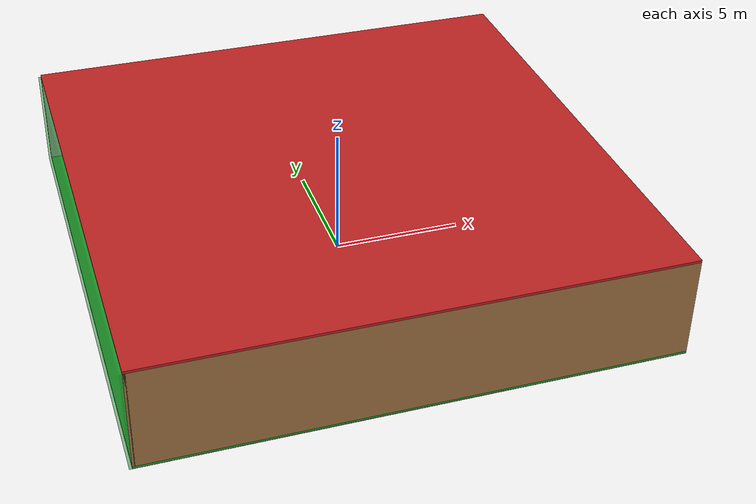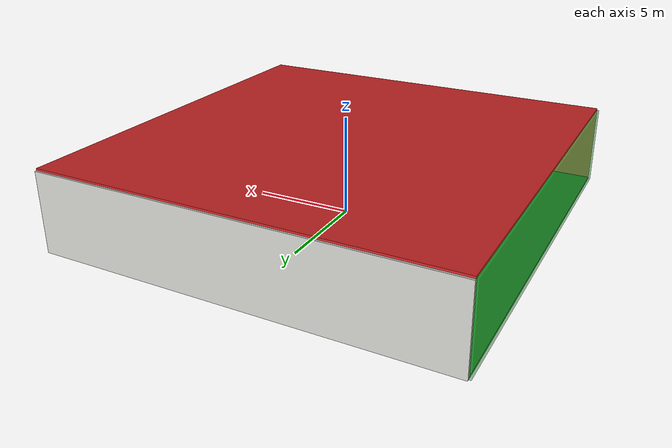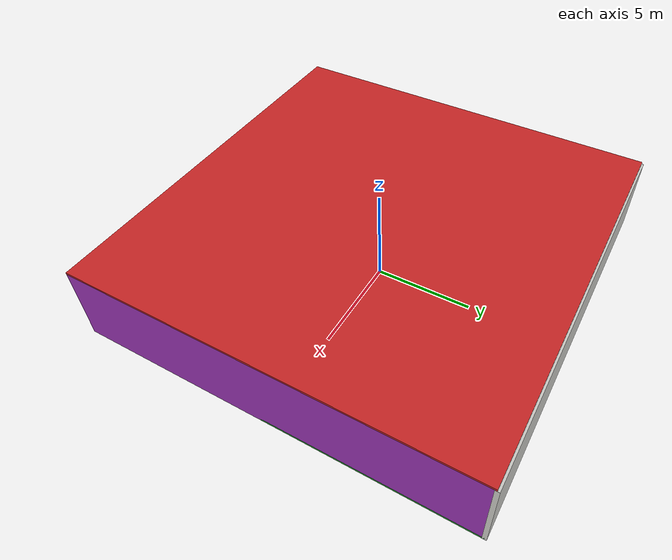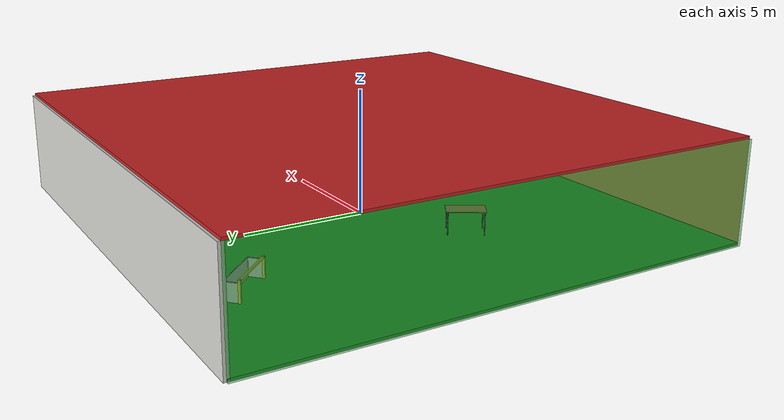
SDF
<sdf version="1.4">
 <world name="default">
  <physics type="ode">
   <max_step_size>0.001</max_step_size>
   <real_time_factor>1</real_time_factor>
   <real_time_update_rate>1000</real_time_update_rate>
   <gravity>0 0 -9.8</gravity>
  </physics>
  <scene><ambient>0.4 0.4 0.4 1</ambient><background>0.7 0.7 0.7 1</background><shadows>1</shadows></scene>
  <model name="Surrounding">
   <static>1</static>
   <link name="Ceiling">
    <collision name="Ceiling_Collision"><geometry><box><size>20 20 0.1</size></box></geometry></collision>
    <visual name="Ceiling_Visual">
     <geometry><box><size>20 20 0.1</size></box></geometry>
     <material>
      <script><uri>file://media/materials/scripts/gazebo.material</uri><name>Gazebo/RedGlow</name></script>
     </material>
    </visual>
    <pose>0 0 4.05 0 0 0</pose>
   </link>
   <link name="Wall_South">
    <collision name="Wall_South_Collision">
     <geometry><box><size>20 0 4</size></box></geometry>
     <pose>0 0 2 0 -0 0</pose>
    </collision>
    <visual name="Wall_South_Visual">
     <pose>0 0 2 0 -0 0</pose>
     <geometry><box><size>20 0 4</size></box></geometry>
     <material>
      <script><uri>file://media/materials/scripts/gazebo.material</uri><name>Gazebo/Wood</name></script>
     </material>
    </visual>
    <velocity_decay><linear>0</linear><angular>0</angular></velocity_decay>
    <pose>0 -10 0 0 -0 0</pose>
   </link>
   <link name="Wall_East">
    <collision name="Wall_21_Collision">
     <geometry><box><size>20 0 4</size></box></geometry>
     <pose>0 0 2 0 -0 0</pose>
    </collision>
    <visual name="Wall_21_Visual">
     <pose>0 0 2 0 -0 0</pose>
     <geometry><box><size>20 0 4</size></box></geometry>
     <material>
      <script><uri>file://media/materials/scripts/gazebo.material</uri><name>Gazebo/PurpleGlow</name></script>
     </material>
    </visual>
    <velocity_decay><linear>0</linear><angular>0</angular></velocity_decay>
    <pose>10 0 0 0 -0 1.5708</pose>
   </link>
   <link name="Wall_North">
    <collision name="Wall_22_Collision">
     <geometry><box><size>20 0.2 4</size></box></geometry>
     <pose>0 0 2 0 -0 0</pose>
    </collision>
    <visual name="Wall_22_Visual">
     <pose>0 0 2 0 -0 0</pose>
     <geometry><box><size>20 0.2 4</size></box></geometry>
     <material>
      <script><uri>file://media/materials/scripts/gazebo.material</uri><name>Gazebo/CeilingTiled</name></script>
     </material>
    </visual>
    <velocity_decay><linear>0</linear><angular>0</angular></velocity_decay>
    <pose>0 10 0 0 -0 0</pose>
   </link>
   <link name="Wall_West">
    <collision name="Wall_23_Collision">
     <geometry><box><size>20 0.2 4</size></box></geometry>
     <pose>0 0 2 0 -0 0</pose>
    </collision>
    <visual name="Wall_23_Visual">
     <pose>0 0 2 0 -0 0</pose>
     <geometry><box><size>20 0.2 4</size></box></geometry>
     <material>
      <script><uri>file://media/materials/scripts/gazebo.material</uri><name>Gazebo/GreenTransparent</name></script>
     </material>
    </visual>
    <velocity_decay><linear>0</linear><angular>0</angular></velocity_decay>
    <pose>-10 0 0 0 0 -1.5708</pose>
   </link>
   <link name="Ground_link">
    <collision name="collision">
     <pose>0 0 .05 0 -0 0</pose>
     <geometry><box><size>20 20 0.1</size></box></geometry>
    </collision>
    <visual name="visual">
     <pose>0 0 .05 0 -0 0</pose>
     <geometry><box><size>20 20 0.1</size></box></geometry>
     <material>
      <script><uri>file://media/materials/scripts/gazebo.material</uri><name>Gazebo/Green</name></script>
     </material>
    </visual>
   </link>
   <static>1</static>
  </model>
  <spherical_coordinates>
   <surface_model>EARTH_WGS84</surface_model>
   <latitude_deg>0</latitude_deg>
   <longitude_deg>0</longitude_deg>
   <elevation>0</elevation>
   <heading_deg>0</heading_deg>
  </spherical_coordinates>
  <light name="lightball_0" type="diffuse">
   <diffuse>0.8 0.8 0.8 1</diffuse>
   <specular>0.2 0.2 0.2 1</specular>
   <attenuation>
    <range>100</range>
    <constant>0.7</constant>
    <linear>0.01</linear>
    <quadratic>0.001</quadratic>
   </attenuation>
   <direction>-0.5 0.1 -0.9</direction>
   <pose>-3.74553274239 -4.34033949108 3.82515914224 0 0 0</pose>
  </light>
  <light name="lightball_1" type="diffuse">
   <diffuse>0.8 0.8 0.8 1</diffuse>
   <specular>0.2 0.2 0.2 1</specular>
   <attenuation>
    <range>100</range>
    <constant>0.7</constant>
    <linear>0.01</linear>
    <quadratic>0.001</quadratic>
   </attenuation>
   <direction>-0.5 0.1 -0.9</direction>
   <pose>4.75179358486 -0.0266969536673 3.16965154749 0 0 0</pose>
  </light>
  <light name="lightball_2" type="diffuse">
   <diffuse>0.8 0.8 0.8 1</diffuse>
   <specular>0.2 0.2 0.2 1</specular>
   <attenuation>
    <range>100</range>
    <constant>0.7</constant>
    <linear>0.01</linear>
    <quadratic>0.001</quadratic>
   </attenuation>
   <direction>-0.5 0.1 -0.9</direction>
   <pose>-1.36298991484 8.78232298301 1.83717952284 0 0 0</pose>
  </light>
  <light name="lightball_3" type="diffuse">
   <diffuse>0.8 0.8 0.8 1</diffuse>
   <specular>0.2 0.2 0.2 1</specular>
   <attenuation>
    <range>100</range>
    <constant>0.7</constant>
    <linear>0.01</linear>
    <quadratic>0.001</quadratic>
   </attenuation>
   <direction>-0.5 0.1 -0.9</direction>
   <pose>-0.850911999983 5.7143666409 3.27366902103 0 0 0</pose>
  </light>
  <light name="lightball_4" type="diffuse">
   <diffuse>0.8 0.8 0.8 1</diffuse>
   <specular>0.2 0.2 0.2 1</specular>
   <attenuation>
    <range>100</range>
    <constant>0.7</constant>
    <linear>0.01</linear>
    <quadratic>0.001</quadratic>
   </attenuation>
   <direction>-0.5 0.1 -0.9</direction>
   <pose>-5.77158455071 -6.11572598445 1.16949378169 0 0 0</pose>
  </light>
  <light name="lightball_5" type="diffuse">
   <diffuse>0.8 0.8 0.8 1</diffuse>
   <specular>0.2 0.2 0.2 1</specular>
   <attenuation>
    <range>100</range>
    <constant>0.7</constant>
    <linear>0.01</linear>
    <quadratic>0.001</quadratic>
   </attenuation>
   <direction>-0.5 0.1 -0.9</direction>
   <pose>-4.08109003216 -2.93336172942 3.806403859 0 0 0</pose>
  </light>
  <light name="lightball_6" type="diffuse">
   <diffuse>0.8 0.8 0.8 1</diffuse>
   <specular>0.2 0.2 0.2 1</specular>
   <attenuation>
    <range>100</range>
    <constant>0.7</constant>
    <linear>0.01</linear>
    <quadratic>0.001</quadratic>
   </attenuation>
   <direction>-0.5 0.1 -0.9</direction>
   <pose>-6.93462464819 -5.61795107218 1.1157887598 0 0 0</pose>
  </light>
  <light name="lightball_7" type="diffuse">
   <diffuse>0.8 0.8 0.8 1</diffuse>
   <specular>0.2 0.2 0.2 1</specular>
   <attenuation>
    <range>100</range>
    <constant>0.7</constant>
    <linear>0.01</linear>
    <quadratic>0.001</quadratic>
   </attenuation>
   <direction>-0.5 0.1 -0.9</direction>
   <pose>7.57398615484 7.53530231324 2.79994506749 0 0 0</pose>
  </light>
  <light name="lightball_8" type="diffuse">
   <diffuse>0.8 0.8 0.8 1</diffuse>
   <specular>0.2 0.2 0.2 1</specular>
   <attenuation>
    <range>100</range>
    <constant>0.7</constant>
    <linear>0.01</linear>
    <quadratic>0.001</quadratic>
   </attenuation>
   <direction>-0.5 0.1 -0.9</direction>
   <pose>0.247946188046 7.83896444003 2.30342173263 0 0 0</pose>
  </light>
  <light name="lightball_9" type="diffuse">
   <diffuse>0.8 0.8 0.8 1</diffuse>
   <specular>0.2 0.2 0.2 1</specular>
   <attenuation>
    <range>100</range>
    <constant>0.7</constant>
    <linear>0.01</linear>
    <quadratic>0.001</quadratic>
   </attenuation>
   <direction>-0.5 0.1 -0.9</direction>
   <pose>-7.24192427746 -7.75312808264 1.62502073339 0 0 0</pose>
  </light>
  <light name="lightball_10" type="diffuse">
   <diffuse>0.8 0.8 0.8 1</diffuse>
   <specular>0.2 0.2 0.2 1</specular>
   <attenuation>
    <range>100</range>
    <constant>0.7</constant>
    <linear>0.01</linear>
    <quadratic>0.001</quadratic>
   </attenuation>
   <direction>-0.5 0.1 -0.9</direction>
   <pose>-5.98892467797 8.38216686528 1.49452821887 0 0 0</pose>
  </light>
  <light name="lightball_11" type="diffuse">
   <diffuse>0.8 0.8 0.8 1</diffuse>
   <specular>0.2 0.2 0.2 1</specular>
   <attenuation>
    <range>100</range>
    <constant>0.7</constant>
    <linear>0.01</linear>
    <quadratic>0.001</quadratic>
   </attenuation>
   <direction>-0.5 0.1 -0.9</direction>
   <pose>-6.81111618201 -7.65541026553 1.28219826572 0 0 0</pose>
  </light>
  <light name="lightball_12" type="diffuse">
   <diffuse>0.8 0.8 0.8 1</diffuse>
   <specular>0.2 0.2 0.2 1</specular>
   <attenuation>
    <range>100</range>
    <constant>0.7</constant>
    <linear>0.01</linear>
    <quadratic>0.001</quadratic>
   </attenuation>
   <direction>-0.5 0.1 -0.9</direction>
   <pose>-5.32236502817 2.66905318479 3.40464749591 0 0 0</pose>
  </light>
  <include><uri>model://table</uri><pose>-4.05017545309 -2.14628340114 0 0 0 1.0216088033</pose></include>
  <include>
   <uri>model://robocup_3Dsim_goal</uri>
   <pose>-5.01807182414 6.98361558498 0 0 0 0.769427855303</pose>
  </include>
  <include>
   <uri>model://textured_shapes</uri>
   <pose>6.96376742501 -0.732466851966 0 0 0 3.06693939909</pose>
  </include>
 </world>
</sdf>

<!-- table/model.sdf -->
<sdf version="1.5">
  <model name="table">
    <static>true</static>
    <link name="link">
      <collision name="surface">
        <pose>0 0 1.0 0 0 0</pose>
        <geometry>
          <box>
            <size>1.5 0.8 0.03</size>
          </box>
        </geometry>
        <surface>
          <friction>
            <ode>
              <mu>0.6</mu>
              <mu2>0.6</mu2>
            </ode>
          </friction>
        </surface>
      </collision>
      <visual name="visual1">
        <pose>0 0 1.0 0 0 0</pose>
        <geometry>
          <box>
            <size>1.5 0.8 0.03</size>
          </box>
        </geometry>
        <material>
          <script>
            <uri>model://media/materials/scripts/gazebo.material</uri>
            <name>Gazebo/Wood</name>
          </script>
        </material>
      </visual>
      <collision name="front_left_leg">
        <pose>0.68 0.38 0.5 0 0 0</pose>
        <geometry>
          <cylinder>
            <radius>0.02</radius>
            <length>1.0</length>
          </cylinder>
        </geometry>
      </collision>
      <visual name="front_left_leg">
        <pose>0.68 0.38 0.5 0 0 0</pose>
        <geometry>
          <cylinder>
            <radius>0.02</radius>
            <length>1.0</length>
          </cylinder>
        </geometry>
        <material>
          <script>
            <uri>model://media/materials/scripts/gazebo.material</uri>
            <name>Gazebo/Grey</name>
          </script>
        </material>
      </visual>
      <collision name="front_right_leg">
        <pose>0.68 -0.38 0.5 0 0 0</pose>
        <geometry>
          <cylinder>
            <radius>0.02</radius>
            <length>1.0</length>
          </cylinder>
        </geometry>
      </collision>
      <visual name="front_right_leg">
        <pose>0.68 -0.38 0.5 0 0 0</pose>
        <geometry>
          <cylinder>
            <radius>0.02</radius>
            <length>1.0</length>
          </cylinder>
        </geometry>
        <material>
          <script>
            <uri>model://media/materials/scripts/gazebo.material</uri>
            <name>Gazebo/Grey</name>
          </script>
        </material>
      </visual>
      <collision name="back_right_leg">
        <pose>-0.68 -0.38 0.5 0 0 0</pose>
        <geometry>
          <cylinder>
            <radius>0.02</radius>
            <length>1.0</length>
          </cylinder>
        </geometry>
      </collision>
      <visual name="back_right_leg">
        <pose>-0.68 -0.38 0.5 0 0 0</pose>
        <geometry>
          <cylinder>
            <radius>0.02</radius>
            <length>1.0</length>
          </cylinder>
        </geometry>
        <material>
          <script>
            <uri>model://media/materials/scripts/gazebo.material</uri>
            <name>Gazebo/Grey</name>
          </script>
        </material>
      </visual>
      <collision name="back_left_leg">
        <pose>-0.68 0.38 0.5 0 0 0</pose>
        <geometry>
          <cylinder>
            <radius>0.02</radius>
            <length>1.0</length>
          </cylinder>
        </geometry>
      </collision>
      <visual name="back_left_leg">
        <pose>-0.68 0.38 0.5 0 0 0</pose>
        <geometry>
          <cylinder>
            <radius>0.02</radius>
            <length>1.0</length>
          </cylinder>
        </geometry>
        <material>
          <script>
            <uri>model://media/materials/scripts/gazebo.material</uri>
            <name>Gazebo/Grey</name>
          </script>
        </material>
      </visual>
    </link>
  </model>
</sdf>

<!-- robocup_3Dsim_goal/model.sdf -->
<sdf version="1.5">
  <model name="robocup_3d_goal">
    <static>true</static>
    <link name="left_post">
      <pose>0 1.05 0.45 0 0 0</pose>
      <collision name="collision">
        <geometry>
          <cylinder>
            <radius>0.05</radius>
            <length>0.9</length>
          </cylinder>
        </geometry>
      </collision>
      <visual name="visual">
        <geometry>
          <cylinder>
            <radius>0.05</radius>
            <length>0.9</length>
          </cylinder>
        </geometry>
        <material>
          <script>
            <uri>file://media/materials/scripts/gazebo.material</uri>
            <name>Gazebo/ZincYellow</name>
          </script>
        </material>
      </visual>
    </link>
    <link name="left_support_horiz_lower">
      <pose>0.30 1.05 0.01 0 0 0</pose>
      <collision name="collision">
        <geometry>
          <box>
            <size>0.50 0.02 0.02</size>
          </box>
        </geometry>
      </collision>
      <visual name="visual">
        <geometry>
          <box>
            <size>0.50 0.02 0.02</size>
          </box>
        </geometry>
        <material>
          <script>
            <uri>file://media/materials/scripts/gazebo.material</uri>
            <name>Gazebo/White</name>
          </script>
        </material>
      </visual>
    </link>
    <link name="left_support_horiz_upper">
      <pose>0.30 1.05 0.79 0 0 0</pose>
      <collision name="collision">
        <geometry>
          <box>
            <size>0.50 0.02 0.02</size>
          </box>
        </geometry>
      </collision>
      <visual name="visual">
        <geometry>
          <box>
            <size>0.50 0.02 0.02</size>
          </box>
        </geometry>
        <material>
          <script>
            <uri>file://media/materials/scripts/gazebo.material</uri>
            <name>Gazebo/White</name>
          </script>
        </material>
      </visual>
    </link>
    <link name="left_support_vertical">
      <pose>0.56 1.05 0.4 0 1.5708 0</pose>
      <collision name="collision">
        <geometry>
          <box>
            <size>0.80 0.02 0.02</size>
          </box>
        </geometry>
      </collision>
      <visual name="visual">
        <geometry>
          <box>
            <size>0.80 0.02 0.02</size>
          </box>
        </geometry>
        <material>
          <script>
            <uri>file://media/materials/scripts/gazebo.material</uri>
            <name>Gazebo/White</name>
          </script>
        </material>
      </visual>
    </link>
    <link name="right_support_horiz_lower">
      <pose>0.30 -1.05 0.01 0 0 0</pose>
      <collision name="collision">
        <geometry>
          <box>
            <size>0.50 0.02 0.02</size>
          </box>
        </geometry>
      </collision>
      <visual name="visual">
        <geometry>
          <box>
            <size>0.50 0.02 0.02</size>
          </box>
        </geometry>
        <material>
          <script>
            <uri>file://media/materials/scripts/gazebo.material</uri>
            <name>Gazebo/White</name>
          </script>
        </material>
      </visual>
    </link>
    <link name="right_support_horiz_upper">
      <pose>0.30 -1.05 0.79 0 0 0</pose>
      <collision name="collision">
        <geometry>
          <box>
            <size>0.50 0.02 0.02</size>
          </box>
        </geometry>
      </collision>
      <visual name="visual">
        <geometry>
          <box>
            <size>0.50 0.02 0.02</size>
          </box>
        </geometry>
        <material>
          <script>
            <uri>file://media/materials/scripts/gazebo.material</uri>
            <name>Gazebo/White</name>
          </script>
        </material>
      </visual>
    </link>
    <link name="right_support_vertical">
      <pose>0.56 -1.05 0.4 0 1.5708 0</pose>
      <collision name="collision">
        <geometry>
          <box>
            <size>0.80 0.02 0.02</size>
          </box>
        </geometry>
      </collision>
      <visual name="visual">
        <geometry>
          <box>
            <size>0.80 0.02 0.02</size>
          </box>
        </geometry>
        <material>
          <script>
            <uri>file://media/materials/scripts/gazebo.material</uri>
            <name>Gazebo/White</name>
          </script>
        </material>
      </visual>
    </link>
    <link name="center_support_horiz_lower">
      <pose>0.56 0 0.01 0 1.5708 0</pose>
      <collision name="collision">
        <geometry>
          <box>
            <size>0.02 2.08 0.02</size>
          </box>
        </geometry>
      </collision>
      <visual name="visual">
        <geometry>
          <box>
            <size>0.02 2.08 0.02</size>
          </box>
        </geometry>
        <material>
          <script>
            <uri>file://media/materials/scripts/gazebo.material</uri>
            <name>Gazebo/White</name>
          </script>
        </material>
      </visual>
    </link>
    <link name="center_support_horiz_upper">
      <pose>0.56 0 0.79 0 1.5708 0</pose>
      <collision name="collision">
        <geometry>
          <box>
            <size>0.02 2.08 0.02</size>
          </box>
        </geometry>
      </collision>
      <visual name="visual">
        <geometry>
          <box>
            <size>0.02 2.08 0.02</size>
          </box>
        </geometry>
        <material>
          <script>
            <uri>file://media/materials/scripts/gazebo.material</uri>
            <name>Gazebo/White</name>
          </script>
        </material>
      </visual>
    </link>
    <link name="right_post">
      <pose>0 -1.05 0.45 0 0 0</pose>
      <collision name="collision">
        <geometry>
          <cylinder>
            <radius>0.05</radius>
            <length>0.9</length>
          </cylinder>
        </geometry>
      </collision>
      <visual name="visual">
        <geometry>
          <cylinder>
            <radius>0.05</radius>
            <length>0.9</length>
          </cylinder>
        </geometry>
        <material>
          <script>
            <uri>file://media/materials/scripts/gazebo.material</uri>
            <name>Gazebo/ZincYellow</name>
          </script>
        </material>
      </visual>
    </link>
    <link name="crossbar">
      <pose>0 0 0.85 1.57 1.57 0</pose>
      <collision name="collision">
        <geometry>
          <cylinder>
            <radius>0.05</radius>
            <length>2.0</length>
          </cylinder>
        </geometry>
      </collision>
      <visual name="visual">
        <geometry>
          <cylinder>
            <radius>0.05</radius>
            <length>2.0</length>
          </cylinder>
        </geometry>
        <material>
          <script>
            <uri>file://media/materials/scripts/gazebo.material</uri>
            <name>Gazebo/ZincYellow</name>
          </script>
        </material>
      </visual>
    </link>
    <link name="center_net">
      <pose>0.56 0 0.40 0 0 0</pose>
      <collision name="collision">
        <geometry>
          <box>
            <size>0.01 2.1 0.80</size>
          </box>
        </geometry>
      </collision>
      <visual name="visual">
        <geometry>
          <box>
            <size>0.01 2.1 0.80</size>
          </box>
        </geometry>
        <material>
          <script>
            <uri>model://../model_source/models/robocup09_spl_field/materials/scripts/</uri>
            <uri>model://../model_source/models/robocup09_spl_field/materials/textures/</uri>
            <name>RoboCup/Net</name>
          </script>
        </material>
      </visual>
    </link>
    <link name="left_net">
      <pose>0.30 1.05 0.40 0 0 0</pose>
      <collision name="collision">
        <geometry>
          <box>
            <size>0.50 0.01 0.76</size>
          </box>
        </geometry>
      </collision>
      <visual name="visual">
        <geometry>
          <box>
            <size>0.50 0.01 0.76</size>
          </box>
        </geometry>
        <material>
          <script>
            <uri>model://../model_source/models/robocup09_spl_field/materials/scripts/</uri>
            <uri>model://../model_source/models/robocup09_spl_field/materials/textures/</uri>
            <name>RoboCup/Net</name>
          </script>
        </material>
      </visual>
    </link>
    <link name="right_net">
      <pose>0.30 -1.05 0.40 0 0 0</pose>
      <collision name="collision">
        <geometry>
          <box>
            <size>0.50 0.01 0.76</size>
          </box>
        </geometry>
      </collision>
      <visual name="visual">
        <geometry>
          <box>
            <size>0.50 0.01 0.76</size>
          </box>
        </geometry>
        <material>
          <script>
            <uri>model://../model_source/models/robocup09_spl_field/materials/scripts/</uri>
            <uri>model://../model_source/models/robocup09_spl_field/materials/textures/</uri>
            <name>RoboCup/Net</name>
          </script>
        </material>
      </visual>
    </link>
  </model>
</sdf>

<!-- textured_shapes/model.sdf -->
<sdf version="1.6">
  <model name="textured_shapes">
    <pose>0 0 0.5 0 0 0</pose>
    <link name="box">
      <pose>0 -1.5 0 0 0 0</pose>
      <collision name="collision">
        <geometry>
          <box>
            <size>1 1 1</size>
          </box>
        </geometry>
      </collision>
      <visual name="visual">
        <geometry>
          <box>
            <size>1 1 1</size>
          </box>
        </geometry>
        <material>
          <script>
            <uri>model://../model_source/models/textured_shapes/materials/scripts</uri>
            <uri>model://../model_source/models/textured_shapes/materials/textures</uri>
            <name>TexturedShape/Squares</name>
          </script>
        </material>
      </visual>
    </link>
    <link name="sphere">
      <collision name="collision">
        <geometry>
          <sphere>
            <radius>0.5</radius>
          </sphere>
        </geometry>
      </collision>
      <visual name="visual">
        <geometry>
          <sphere>
            <radius>0.5</radius>
          </sphere>
        </geometry>
        <material>
          <script>
            <uri>model://../model_source/models/textured_shapes/materials/scripts</uri>
            <uri>model://../model_source/models/textured_shapes/materials/textures</uri>
            <name>TexturedShape/Squares</name>
          </script>
        </material>
      </visual>
    </link>
    <link name="cylinder">
      <pose>0 1.5 0 0 0 0</pose>
      <collision name="collision">
        <geometry>
          <cylinder>
            <radius>0.5</radius>
            <length>1</length>
          </cylinder>
        </geometry>
      </collision>
      <visual name="visual">
        <geometry>
          <cylinder>
            <radius>0.5</radius>
            <length>1</length>
          </cylinder>
        </geometry>
        <material>
          <script>
            <uri>model://../model_source/models/textured_shapes/materials/scripts</uri>
            <uri>model://../model_source/models/textured_shapes/materials/textures</uri>
            <name>TexturedShape/Squares</name>
          </script>
        </material>
      </visual>
    </link>
  </model>
</sdf>
